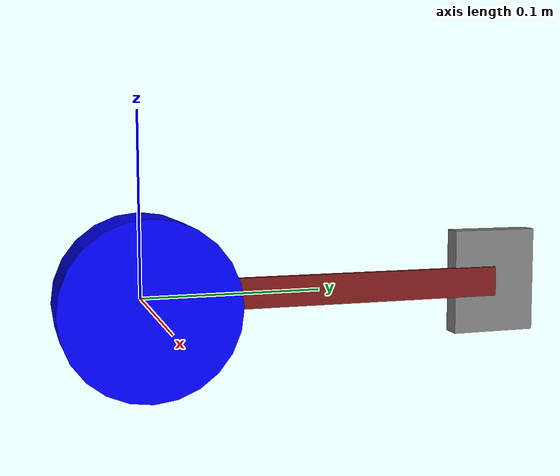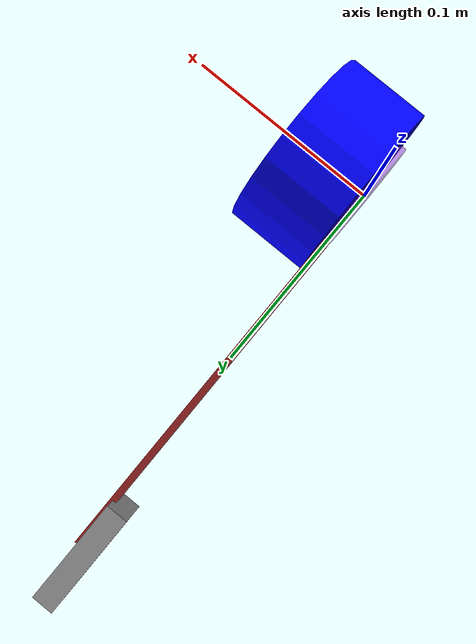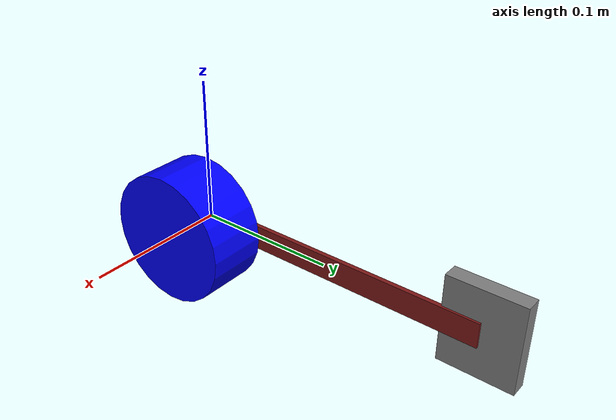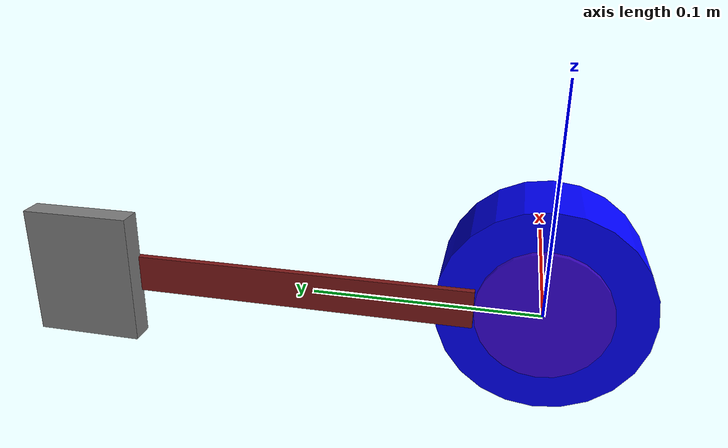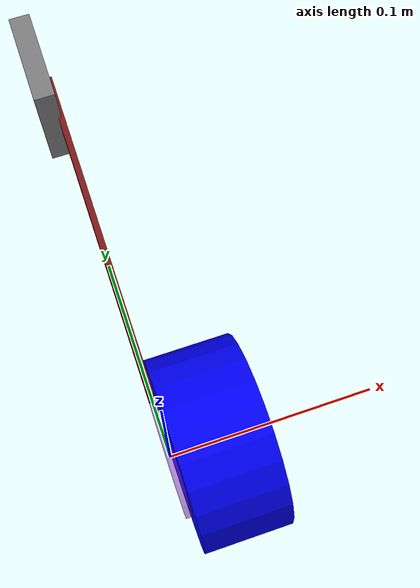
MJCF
<mujoco model="Motor Control">
    <option timestep="0.005" iterations="50" solver="Newton" tolerance="1e-10"/>
    <option gravity = "0 0 -9.81">
        <flag contact="enable" />
    </option >
    <visual>
        <rgba haze=".3 .3 .3 1"/>
    </visual>
    <default>
        <joint type="hinge" pos="0 0 0" axis="1 0 0" limited="false" damping="0.02"/>
    </default>
    <asset>
        <texture type="skybox" builtin="gradient" rgb1="0.6 0.6 0.6" rgb2="0 0 0" width="512" height="512"/>
        <texture name="texplane" type="2d" builtin="checker" rgb1=".25 .25 .25" rgb2=".3 .3 .3" width="512" height="512" mark="cross" markrgb=".8 .8 .8"/>
        <material name="matplane" reflectance="0.3" texture="texplane" texrepeat="1 1" texuniform="true"/>
    </asset>
    <worldbody>
        <geom name="floor" pos="0 0 -0.5" size="0 0 1" type="plane" material="matplane"/>
        <light directional="true" diffuse=".5 .5 .5" specular=".2 .2 .2" pos="0 0 5" dir="0 0 -1"/>
        <body>
            <geom name = "motor_body" type = "cylinder" size = "0.04625 0.021" rgba = "0 0 1 1" quat="0 0.701 0 0.701" pos = "0.02258 0 0" friction="0" gap="0.01"/>
            <body>
                <body name="arm" pos = "0 0.029 0">
                    <geom name="load_arm" type = "box" size=".001588 0.090744 0.008625" rgba=".5 .1 .1 1" pos = "0 0.090744 0" density = "2710"/> <!--body id 3-->
                    <body name = "weight" pos="-0.0055 0.181488 0.0"> <!--body id 4-->
                        <geom name="weight" type="box" size="0.0055 0.0255 0.0305" density = "7750"/>
                        <site name = "mount"/>
                    </body>
                </body>
                <joint name="motor"/>
                <geom name="motor" type="cylinder" pos="0 0 0" size=".029 .001588" rgba=".5 .1 .8 .5" quat="0 0.701 0 0.701" group="1" friction="0" gap="0.01" density = "2710"/> <!--body id 2-->
            </body>
        </body>
    </worldbody>
    <actuator>
        <motor name="torque" joint="motor"  gear="1" ctrllimited="true" ctrlrange="-4 4"/>
        <position name="position_servo" joint="motor" kp="0"/>
        <velocity name="velocity_servo" joint="motor" kv="0.1"/>
   </actuator>

    <sensor>
      <torque name = "torque_sensor" site= "mount"/>
   </sensor>
   <keyframe>
        <key name="spinning" time="0" qpos="-1.6" qvel = "0"/>
   </keyframe>

</mujoco>
